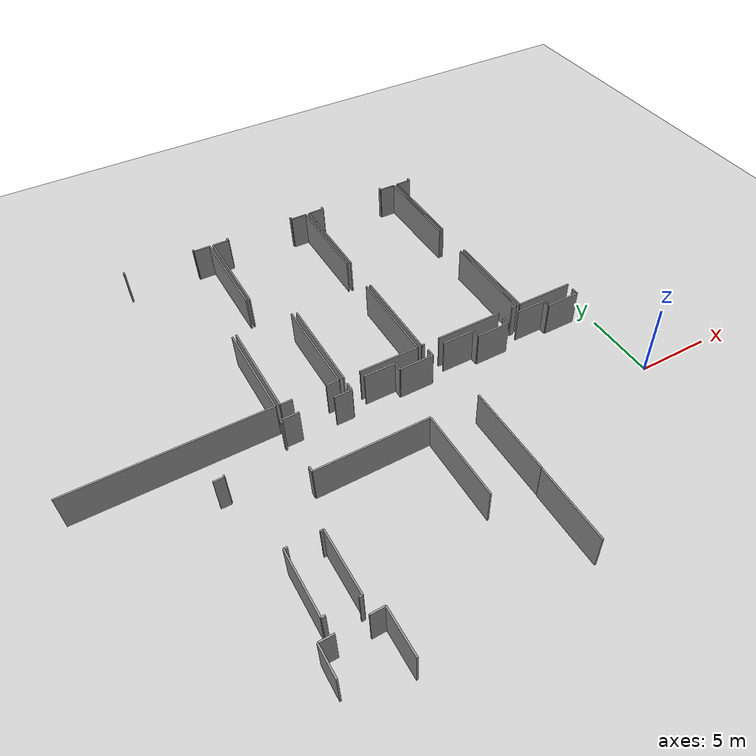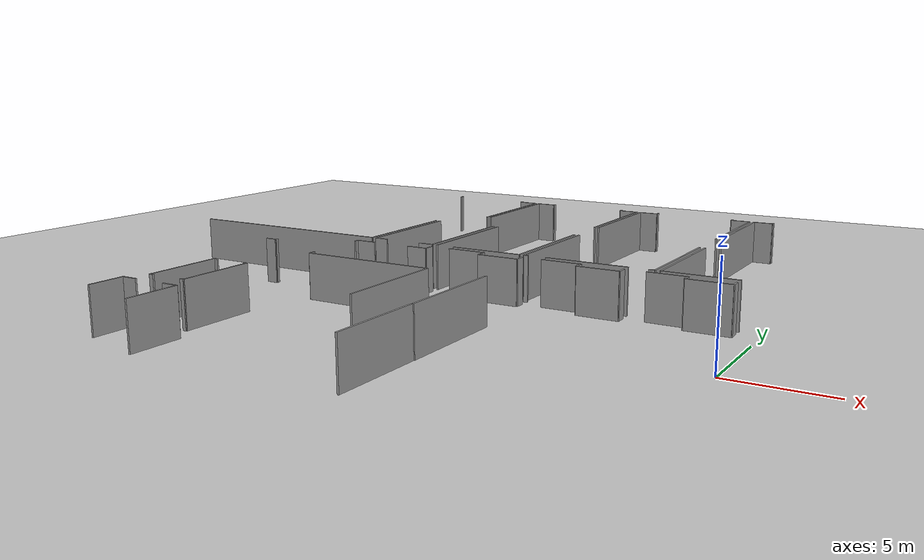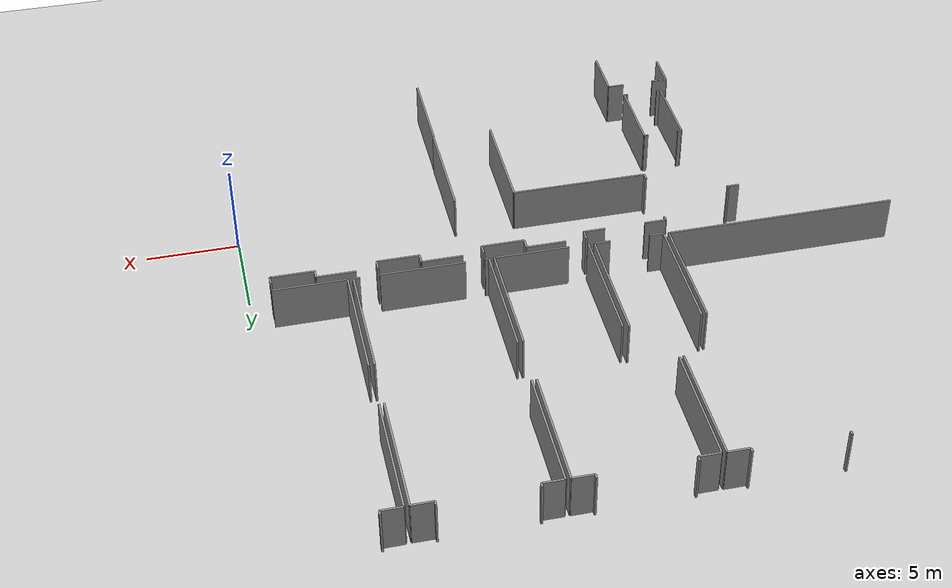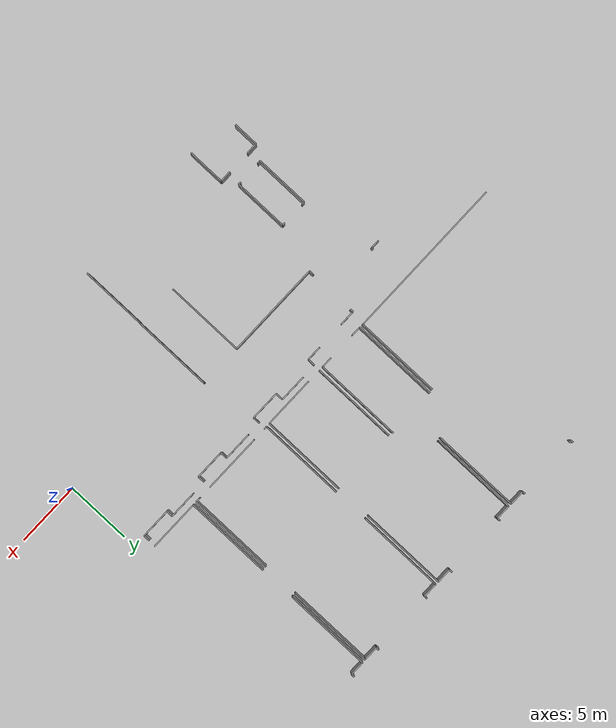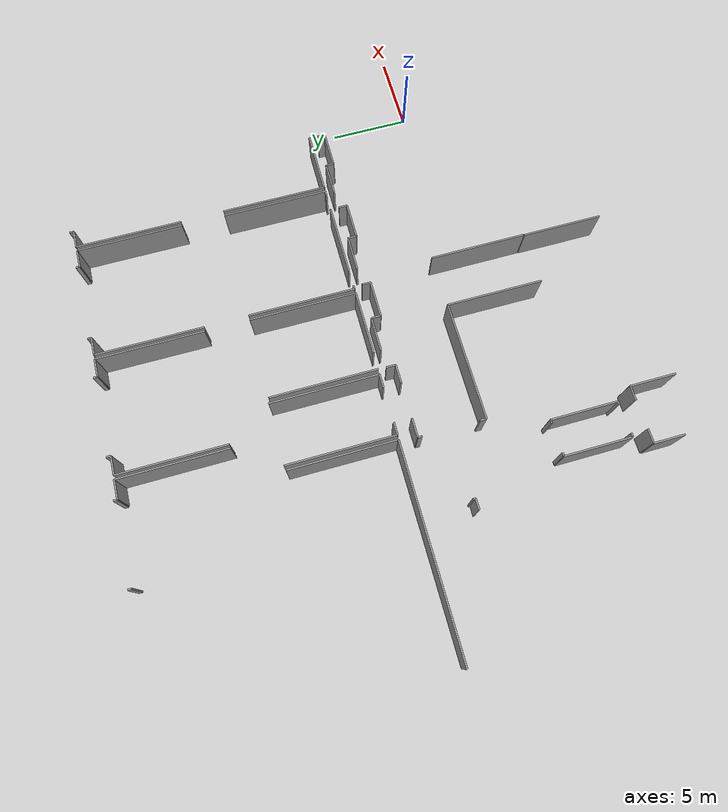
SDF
<sdf version="1.6">
 <world name="default">
  <model name="ground_plane">
   <static>1</static>
   <link name="link">
    <collision name="collision">
     <geometry><plane><normal>0 0 1</normal><size>100 100</size></plane></geometry>
     <surface><friction><ode><mu>100</mu><mu2>50</mu2></ode></friction></surface>
    </collision>
    <visual name="visual">
     <cast_shadows>0</cast_shadows>
     <geometry><plane><normal>0 0 1</normal><size>100 100</size></plane></geometry>
     <material>
      <script><uri>file://media/materials/scripts/gazebo.material</uri><name>Gazebo/Grey</name></script>
     </material>
    </visual>
   </link>
  </model>
  <model name="50045230">
   <static>1</static>
   <link name="Wall_26">
    <collision name="Wall_26_Collision">
     <geometry><box><size>6.72553226605 0.1 2.5</size></box></geometry>
     <pose>3.36276613303 0 1.25 0 0 0</pose>
    </collision>
    <visual name="Wall_26_Visual">
     <pose>3.36276613303 0 1.25 0 0 0</pose>
     <geometry><box><size>6.72553226605 0.1 2.5</size></box></geometry>
     <material>
      <script><uri>file://media/materials/scripts/gazebo.material</uri><name>Gazebo/Grey</name></script>
      <ambient>1 1 1 1</ambient>
     </material>
    </visual>
    <pose>28.5077507078 -9.62039940584 0 0 0 -1.57079632679</pose>
   </link>
   <link name="Wall_27">
    <collision name="Wall_27_Collision">
     <geometry><box><size>0.855434382419 0.1 2.5</size></box></geometry>
     <pose>0.42771719121 0 1.25 0 0 0</pose>
    </collision>
    <visual name="Wall_27_Visual">
     <pose>0.42771719121 0 1.25 0 0 0</pose>
     <geometry><box><size>0.855434382419 0.1 2.5</size></box></geometry>
     <material>
      <script><uri>file://media/materials/scripts/gazebo.material</uri><name>Gazebo/Grey</name></script>
      <ambient>1 1 1 1</ambient>
     </material>
    </visual>
    <pose>28.5077507078 -16.3459316719 0 0 0 3.14159265359</pose>
   </link>
   <link name="Wall_28">
    <collision name="Wall_28_Collision">
     <geometry><box><size>0.772785557403 0.1 2.5</size></box></geometry>
     <pose>0.386392778702 0 1.25 0 0 0</pose>
    </collision>
    <visual name="Wall_28_Visual">
     <pose>0.386392778702 0 1.25 0 0 0</pose>
     <geometry><box><size>0.772785557403 0.1 2.5</size></box></geometry>
     <material>
      <script><uri>file://media/materials/scripts/gazebo.material</uri><name>Gazebo/Grey</name></script>
      <ambient>1 1 1 1</ambient>
     </material>
    </visual>
    <pose>25.4884659819 -16.3459316719 0 0 0 3.14159265359</pose>
   </link>
   <link name="Wall_29">
    <collision name="Wall_29_Collision">
     <geometry><box><size>6.701029619 0.1 2.5</size></box></geometry>
     <pose>3.3505148095 0 1.25 0 0 0</pose>
    </collision>
    <visual name="Wall_29_Visual">
     <pose>3.3505148095 0 1.25 0 0 0</pose>
     <geometry><box><size>6.701029619 0.1 2.5</size></box></geometry>
     <material>
      <script><uri>file://media/materials/scripts/gazebo.material</uri><name>Gazebo/Grey</name></script>
      <ambient>1 1 1 1</ambient>
     </material>
    </visual>
    <pose>24.7156804245 -16.3459316719 0 0 0 1.57079632679</pose>
   </link>
   <link name="Wall_38">
    <collision name="Wall_38_Collision">
     <geometry><box><size>0.230553404344 0.1 2.5</size></box></geometry>
     <pose>0.115276702172 0 1.25 0 0 0</pose>
    </collision>
    <visual name="Wall_38_Visual">
     <pose>0.115276702172 0 1.25 0 0 0</pose>
     <geometry><box><size>0.230553404344 0.1 2.5</size></box></geometry>
     <material>
      <script><uri>file://media/materials/scripts/gazebo.material</uri><name>Gazebo/Grey</name></script>
      <ambient>1 1 1 1</ambient>
     </material>
    </visual>
    <pose>20.4308911092 -0.254802137951 0 0 0 1.57079632679</pose>
   </link>
   <link name="Wall_39">
    <collision name="Wall_39_Collision">
     <geometry><box><size>0.230553404344 0.1 2.5</size></box></geometry>
     <pose>0.115276702172 0 1.25 0 0 0</pose>
    </collision>
    <visual name="Wall_39_Visual">
     <pose>0.115276702172 0 1.25 0 0 0</pose>
     <geometry><box><size>0.230553404344 0.1 2.5</size></box></geometry>
     <material>
      <script><uri>file://media/materials/scripts/gazebo.material</uri><name>Gazebo/Grey</name></script>
      <ambient>1 1 1 1</ambient>
     </material>
    </visual>
    <pose>25.3323092158 -0.0242487336067 0 0 0 -1.57079632679</pose>
   </link>
   <link name="Wall_40">
    <collision name="Wall_40_Collision">
     <geometry><box><size>1.15809920398 0.1 2.5</size></box></geometry>
     <pose>0.579049601991 0 1.25 0 0 0</pose>
    </collision>
    <visual name="Wall_40_Visual">
     <pose>0.579049601991 0 1.25 0 0 0</pose>
     <geometry><box><size>1.15809920398 0.1 2.5</size></box></geometry>
     <material>
      <script><uri>file://media/materials/scripts/gazebo.material</uri><name>Gazebo/Grey</name></script>
      <ambient>1 1 1 1</ambient>
     </material>
    </visual>
    <pose>25.3323092158 -0.254802137951 0 0 0 0.0</pose>
   </link>
   <link name="Wall_41">
    <collision name="Wall_41_Collision">
     <geometry><box><size>6.70245073078 0.1 2.5</size></box></geometry>
     <pose>3.35122536539 0 1.25 0 0 0</pose>
    </collision>
    <visual name="Wall_41_Visual">
     <pose>3.35122536539 0 1.25 0 0 0</pose>
     <geometry><box><size>6.70245073078 0.1 2.5</size></box></geometry>
     <material>
      <script><uri>file://media/materials/scripts/gazebo.material</uri><name>Gazebo/Grey</name></script>
      <ambient>1 1 1 1</ambient>
     </material>
    </visual>
    <pose>26.4904084198 -0.254802137951 0 0 0 -1.56808764098</pose>
   </link>
   <link name="Wall_42">
    <collision name="Wall_42_Collision">
     <geometry><box><size>6.6383129991 0.1 2.5</size></box></geometry>
     <pose>3.31915649955 0 1.25 0 0 0</pose>
    </collision>
    <visual name="Wall_42_Visual">
     <pose>3.31915649955 0 1.25 0 0 0</pose>
     <geometry><box><size>6.6383129991 0.1 2.5</size></box></geometry>
     <material>
      <script><uri>file://media/materials/scripts/gazebo.material</uri><name>Gazebo/Grey</name></script>
      <ambient>1 1 1 1</ambient>
     </material>
    </visual>
    <pose>26.7381009814 -6.91812561098 0 0 0 1.57079632679</pose>
   </link>
   <link name="Wall_43">
    <collision name="Wall_43_Collision">
     <geometry><box><size>1.1339774271 0.1 2.5</size></box></geometry>
     <pose>0.566988713548 0 1.25 0 0 0</pose>
    </collision>
    <visual name="Wall_43_Visual">
     <pose>0.566988713548 0 1.25 0 0 0</pose>
     <geometry><box><size>1.1339774271 0.1 2.5</size></box></geometry>
     <material>
      <script><uri>file://media/materials/scripts/gazebo.material</uri><name>Gazebo/Grey</name></script>
      <ambient>1 1 1 1</ambient>
     </material>
    </visual>
    <pose>26.7381009814 -0.279812611881 0 0 0 0.0</pose>
   </link>
   <link name="Wall_44">
    <collision name="Wall_44_Collision">
     <geometry><box><size>0.272068251933 0.1 2.5</size></box></geometry>
     <pose>0.136034125966 0 1.25 0 0 0</pose>
    </collision>
    <visual name="Wall_44_Visual">
     <pose>0.136034125966 0 1.25 0 0 0</pose>
     <geometry><box><size>0.272068251933 0.1 2.5</size></box></geometry>
     <material>
      <script><uri>file://media/materials/scripts/gazebo.material</uri><name>Gazebo/Grey</name></script>
      <ambient>1 1 1 1</ambient>
     </material>
    </visual>
    <pose>27.8720784085 -0.279812611881 0 0 0 1.57079632679</pose>
   </link>
   <link name="Wall_45">
    <collision name="Wall_45_Collision">
     <geometry><box><size>0.252516916983 0.1 2.5</size></box></geometry>
     <pose>0.126258458492 0 1.25 0 0 0</pose>
    </collision>
    <visual name="Wall_45_Visual">
     <pose>0.126258458492 0 1.25 0 0 0</pose>
     <geometry><box><size>0.252516916983 0.1 2.5</size></box></geometry>
     <material>
      <script><uri>file://media/materials/scripts/gazebo.material</uri><name>Gazebo/Grey</name></script>
      <ambient>1 1 1 1</ambient>
     </material>
    </visual>
    <pose>32.7750199957 -0.00774435994769 0 0 0 -1.57079632679</pose>
   </link>
   <link name="Wall_46">
    <collision name="Wall_46_Collision">
     <geometry><box><size>1.14159483032 0.1 2.5</size></box></geometry>
     <pose>0.570797415161 0 1.25 0 0 0</pose>
    </collision>
    <visual name="Wall_46_Visual">
     <pose>0.570797415161 0 1.25 0 0 0</pose>
     <geometry><box><size>1.14159483032 0.1 2.5</size></box></geometry>
     <material>
      <script><uri>file://media/materials/scripts/gazebo.material</uri><name>Gazebo/Grey</name></script>
      <ambient>1 1 1 1</ambient>
     </material>
    </visual>
    <pose>32.7750199957 -0.260261276931 0 0 0 0.0</pose>
   </link>
   <link name="Wall_47">
    <collision name="Wall_47_Collision">
     <geometry><box><size>6.65786535204 0.1 2.5</size></box></geometry>
     <pose>3.32893267602 0 1.25 0 0 0</pose>
    </collision>
    <visual name="Wall_47_Visual">
     <pose>3.32893267602 0 1.25 0 0 0</pose>
     <geometry><box><size>6.65786535204 0.1 2.5</size></box></geometry>
     <material>
      <script><uri>file://media/materials/scripts/gazebo.material</uri><name>Gazebo/Grey</name></script>
      <ambient>1 1 1 1</ambient>
     </material>
    </visual>
    <pose>33.916614826 -0.260261276931 0 0 0 -1.57024333497</pose>
   </link>
   <link name="Wall_48">
    <collision name="Wall_48_Collision">
     <geometry><box><size>6.68135132733 0.1 2.5</size></box></geometry>
     <pose>3.34067566367 0 1.25 0 0 0</pose>
    </collision>
    <visual name="Wall_48_Visual">
     <pose>3.34067566367 0 1.25 0 0 0</pose>
     <geometry><box><size>6.68135132733 0.1 2.5</size></box></geometry>
     <material>
      <script><uri>file://media/materials/scripts/gazebo.material</uri><name>Gazebo/Grey</name></script>
      <ambient>1 1 1 1</ambient>
     </material>
    </visual>
    <pose>34.1743369685 -6.9511343583 0 0 0 1.57079632679</pose>
   </link>
   <link name="Wall_49">
    <collision name="Wall_49_Collision">
     <geometry><box><size>1.13677047495 0.1 2.5</size></box></geometry>
     <pose>0.568385237473 0 1.25 0 0 0</pose>
    </collision>
    <visual name="Wall_49_Visual">
     <pose>0.568385237473 0 1.25 0 0 0</pose>
     <geometry><box><size>1.13677047495 0.1 2.5</size></box></geometry>
     <material>
      <script><uri>file://media/materials/scripts/gazebo.material</uri><name>Gazebo/Grey</name></script>
      <ambient>1 1 1 1</ambient>
     </material>
    </visual>
    <pose>34.1743369685 -0.269783030965 0 0 0 0.0</pose>
   </link>
   <link name="Wall_50">
    <collision name="Wall_50_Collision">
     <geometry><box><size>0.242106465906 0.1 2.5</size></box></geometry>
     <pose>0.121053232953 0 1.25 0 0 0</pose>
    </collision>
    <visual name="Wall_50_Visual">
     <pose>0.121053232953 0 1.25 0 0 0</pose>
     <geometry><box><size>0.242106465906 0.1 2.5</size></box></geometry>
     <material>
      <script><uri>file://media/materials/scripts/gazebo.material</uri><name>Gazebo/Grey</name></script>
      <ambient>1 1 1 1</ambient>
     </material>
    </visual>
    <pose>35.3111074435 -0.269783030965 0 0 0 1.57079632679</pose>
   </link>
   <link name="Wall_51">
    <collision name="Wall_51_Collision">
     <geometry><box><size>0.242106465906 0.1 2.5</size></box></geometry>
     <pose>0.121053232953 0 1.25 0 0 0</pose>
    </collision>
    <visual name="Wall_51_Visual">
     <pose>0.121053232953 0 1.25 0 0 0</pose>
     <geometry><box><size>0.242106465906 0.1 2.5</size></box></geometry>
     <material>
      <script><uri>file://media/materials/scripts/gazebo.material</uri><name>Gazebo/Grey</name></script>
      <ambient>1 1 1 1</ambient>
     </material>
    </visual>
    <pose>40.2111290261 -0.027676565059 0 0 0 -1.57079632679</pose>
   </link>
   <link name="Wall_52">
    <collision name="Wall_52_Collision">
     <geometry><box><size>1.1520052814 0.1 2.5</size></box></geometry>
     <pose>0.5760026407 0 1.25 0 0 0</pose>
    </collision>
    <visual name="Wall_52_Visual">
     <pose>0.5760026407 0 1.25 0 0 0</pose>
     <geometry><box><size>1.1520052814 0.1 2.5</size></box></geometry>
     <material>
      <script><uri>file://media/materials/scripts/gazebo.material</uri><name>Gazebo/Grey</name></script>
      <ambient>1 1 1 1</ambient>
     </material>
    </visual>
    <pose>40.2111290261 -0.269783030965 0 0 0 0.0</pose>
   </link>
   <link name="Wall_53">
    <collision name="Wall_53_Collision">
     <geometry><box><size>6.68136131582 0.1 2.5</size></box></geometry>
     <pose>3.34068065791 0 1.25 0 0 0</pose>
    </collision>
    <visual name="Wall_53_Visual">
     <pose>3.34068065791 0 1.25 0 0 0</pose>
     <geometry><box><size>6.68136131582 0.1 2.5</size></box></geometry>
     <material>
      <script><uri>file://media/materials/scripts/gazebo.material</uri><name>Gazebo/Grey</name></script>
      <ambient>1 1 1 1</ambient>
     </material>
    </visual>
    <pose>41.3631343075 -0.269783030965 0 0 0 -1.56906717808</pose>
   </link>
   <link name="Wall_54">
    <collision name="Wall_54_Collision">
     <geometry><box><size>6.68554089911 0.1 2.5</size></box></geometry>
     <pose>3.34277044955 0 1.25 0 0 0</pose>
    </collision>
    <visual name="Wall_54_Visual">
     <pose>3.34277044955 0 1.25 0 0 0</pose>
     <geometry><box><size>6.68554089911 0.1 2.5</size></box></geometry>
     <material>
      <script><uri>file://media/materials/scripts/gazebo.material</uri><name>Gazebo/Grey</name></script>
      <ambient>1 1 1 1</ambient>
     </material>
    </visual>
    <pose>41.6302512473 -6.94008912362 0 0 0 1.57079632679</pose>
   </link>
   <link name="Wall_55">
    <collision name="Wall_55_Collision">
     <geometry><box><size>1.11671131311 0.1 2.5</size></box></geometry>
     <pose>0.558355656557 0 1.25 0 0 0</pose>
    </collision>
    <visual name="Wall_55_Visual">
     <pose>0.558355656557 0 1.25 0 0 0</pose>
     <geometry><box><size>1.11671131311 0.1 2.5</size></box></geometry>
     <material>
      <script><uri>file://media/materials/scripts/gazebo.material</uri><name>Gazebo/Grey</name></script>
      <ambient>1 1 1 1</ambient>
     </material>
    </visual>
    <pose>41.6302512473 -0.25454822451 0 0 0 0.0</pose>
   </link>
   <link name="Wall_56">
    <collision name="Wall_56_Collision">
     <geometry><box><size>0.254040397628 0.1 2.5</size></box></geometry>
     <pose>0.127020198814 0 1.25 0 0 0</pose>
    </collision>
    <visual name="Wall_56_Visual">
     <pose>0.127020198814 0 1.25 0 0 0</pose>
     <geometry><box><size>0.254040397628 0.1 2.5</size></box></geometry>
     <material>
      <script><uri>file://media/materials/scripts/gazebo.material</uri><name>Gazebo/Grey</name></script>
      <ambient>1 1 1 1</ambient>
     </material>
    </visual>
    <pose>42.7469625605 -0.25454822451 0 0 0 1.57079632679</pose>
   </link>
   <link name="Wall_123">
    <collision name="Wall_123_Collision">
     <geometry><box><size>6.64275648431 0.1 2.5</size></box></geometry>
     <pose>3.32137824216 0 1.25 0 0 0</pose>
    </collision>
    <visual name="Wall_123_Visual">
     <pose>3.32137824216 0 1.25 0 0 0</pose>
     <geometry><box><size>6.64275648431 0.1 2.5</size></box></geometry>
     <material>
      <script><uri>file://media/materials/scripts/gazebo.material</uri><name>Gazebo/Grey</name></script>
      <ambient>1 1 1 1</ambient>
     </material>
    </visual>
    <pose>41.6621173842 -16.3427577539 0 0 0 1.57079632679</pose>
   </link>
   <link name="Wall_126">
    <collision name="Wall_126_Collision">
     <geometry><box><size>3.94162638152 0.1 2.5</size></box></geometry>
     <pose>1.97081319076 0 1.25 0 0 0</pose>
    </collision>
    <visual name="Wall_126_Visual">
     <pose>1.97081319076 0 1.25 0 0 0</pose>
     <geometry><box><size>3.94162638152 0.1 2.5</size></box></geometry>
     <material>
      <script><uri>file://media/materials/scripts/gazebo.material</uri><name>Gazebo/Grey</name></script>
      <ambient>1 1 1 1</ambient>
     </material>
    </visual>
    <pose>45.6037426841 -16.3456777585 0 0 0 3.14085184141</pose>
   </link>
   <link name="Wall_127">
    <collision name="Wall_127_Collision">
     <geometry><box><size>6.66306955959 0.1 2.5</size></box></geometry>
     <pose>3.33153477979 0 1.25 0 0 0</pose>
    </collision>
    <visual name="Wall_127_Visual">
     <pose>3.33153477979 0 1.25 0 0 0</pose>
     <geometry><box><size>6.66306955959 0.1 2.5</size></box></geometry>
     <material>
      <script><uri>file://media/materials/scripts/gazebo.material</uri><name>Gazebo/Grey</name></script>
      <ambient>1 1 1 1</ambient>
     </material>
    </visual>
    <pose>34.2065839755 -16.3602777813 0 0 0 1.57079632679</pose>
   </link>
   <link name="Wall_128">
    <collision name="Wall_128_Collision">
     <geometry><box><size>6.64846953673 0.1 2.5</size></box></geometry>
     <pose>3.32423476837 0 1.25 0 0 0</pose>
    </collision>
    <visual name="Wall_128_Visual">
     <pose>3.32423476837 0 1.25 0 0 0</pose>
     <geometry><box><size>6.64846953673 0.1 2.5</size></box></geometry>
     <material>
      <script><uri>file://media/materials/scripts/gazebo.material</uri><name>Gazebo/Grey</name></script>
      <ambient>1 1 1 1</ambient>
     </material>
    </visual>
    <pose>41.3636421344 -9.69720822172 0 0 0 -1.57079632679</pose>
   </link>
   <link name="Wall_129">
    <collision name="Wall_129_Collision">
     <geometry><box><size>0.331230083664 0.1 2.5</size></box></geometry>
     <pose>0.165615041832 0 1.25 0 0 0</pose>
    </collision>
    <visual name="Wall_129_Visual">
     <pose>0.165615041832 0 1.25 0 0 0</pose>
     <geometry><box><size>0.331230083664 0.1 2.5</size></box></geometry>
     <material>
      <script><uri>file://media/materials/scripts/gazebo.material</uri><name>Gazebo/Grey</name></script>
      <ambient>1 1 1 1</ambient>
     </material>
    </visual>
    <pose>41.3636421344 -16.3456777585 0 0 0 3.14159265359</pose>
   </link>
   <link name="Wall_130">
    <collision name="Wall_130_Collision">
     <geometry><box><size>4.53273579037 0.1 2.5</size></box></geometry>
     <pose>2.26636789518 0 1.25 0 0 0</pose>
    </collision>
    <visual name="Wall_130_Visual">
     <pose>2.26636789518 0 1.25 0 0 0</pose>
     <geometry><box><size>4.53273579037 0.1 2.5</size></box></geometry>
     <material>
      <script><uri>file://media/materials/scripts/gazebo.material</uri><name>Gazebo/Grey</name></script>
      <ambient>1 1 1 1</ambient>
     </material>
    </visual>
    <pose>39.9940330341 -16.3456777585 0 0 0 3.14159265359</pose>
   </link>
   <link name="Wall_131">
    <collision name="Wall_131_Collision">
     <geometry><box><size>0.22848122015 0.1 2.5</size></box></geometry>
     <pose>0.114240610075 0 1.25 0 0 0</pose>
    </collision>
    <visual name="Wall_131_Visual">
     <pose>0.114240610075 0 1.25 0 0 0</pose>
     <geometry><box><size>0.22848122015 0.1 2.5</size></box></geometry>
     <material>
      <script><uri>file://media/materials/scripts/gazebo.material</uri><name>Gazebo/Grey</name></script>
      <ambient>1 1 1 1</ambient>
     </material>
    </visual>
    <pose>34.4345982455 -16.3456777585 0 0 0 -3.07764876766</pose>
   </link>
   <link name="Wall_132">
    <collision name="Wall_132_Collision">
     <geometry><box><size>6.66852869857 0.1 2.5</size></box></geometry>
     <pose>3.33426434928 0 1.25 0 0 0</pose>
    </collision>
    <visual name="Wall_132_Visual">
     <pose>3.33426434928 0 1.25 0 0 0</pose>
     <geometry><box><size>6.66852869857 0.1 2.5</size></box></geometry>
     <material>
      <script><uri>file://media/materials/scripts/gazebo.material</uri><name>Gazebo/Grey</name></script>
      <ambient>1 1 1 1</ambient>
     </material>
    </visual>
    <pose>28.8335216525 -16.3680221413 0 0 0 1.57079632679</pose>
   </link>
   <link name="Wall_133">
    <collision name="Wall_133_Collision">
     <geometry><box><size>6.66446608351 0.1 2.5</size></box></geometry>
     <pose>3.33223304176 0 1.25 0 0 0</pose>
    </collision>
    <visual name="Wall_133_Visual">
     <pose>3.33223304176 0 1.25 0 0 0</pose>
     <geometry><box><size>6.66446608351 0.1 2.5</size></box></geometry>
     <material>
      <script><uri>file://media/materials/scripts/gazebo.material</uri><name>Gazebo/Grey</name></script>
      <ambient>1 1 1 1</ambient>
     </material>
    </visual>
    <pose>33.9228357053 -9.69949344269 0 0 0 -1.57079632679</pose>
   </link>
   <link name="Wall_134">
    <collision name="Wall_134_Collision">
     <geometry><box><size>4.0294813985 0.1 2.5</size></box></geometry>
     <pose>2.01474069925 0 1.25 0 0 0</pose>
    </collision>
    <visual name="Wall_134_Visual">
     <pose>2.01474069925 0 1.25 0 0 0</pose>
     <geometry><box><size>4.0294813985 0.1 2.5</size></box></geometry>
     <material>
      <script><uri>file://media/materials/scripts/gazebo.material</uri><name>Gazebo/Grey</name></script>
      <ambient>1 1 1 1</ambient>
     </material>
    </visual>
    <pose>33.9228357053 -16.3639595262 0 0 0 -3.14058443061</pose>
   </link>
   <link name="Wall_136">
    <collision name="Wall_136_Collision">
     <geometry><box><size>6.62663298082 0.1 2.5</size></box></geometry>
     <pose>3.31331649041 0 1.25 0 0 0</pose>
    </collision>
    <visual name="Wall_136_Visual">
     <pose>3.31331649041 0 1.25 0 0 0</pose>
     <geometry><box><size>6.62663298082 0.1 2.5</size></box></geometry>
     <material>
      <script><uri>file://media/materials/scripts/gazebo.material</uri><name>Gazebo/Grey</name></script>
      <ambient>1 1 1 1</ambient>
     </material>
    </visual>
    <pose>24.4349791156 -9.69720822172 0 0 0 -1.57079632679</pose>
   </link>
   <link name="Wall_137">
    <collision name="Wall_137_Collision">
     <geometry><box><size>12.5752167879 0.1 2.5</size></box></geometry>
     <pose>6.28760839396 0 1.25 0 0 0</pose>
    </collision>
    <visual name="Wall_137_Visual">
     <pose>6.28760839396 0 1.25 0 0 0</pose>
     <geometry><box><size>12.5752167879 0.1 2.5</size></box></geometry>
     <material>
      <script><uri>file://media/materials/scripts/gazebo.material</uri><name>Gazebo/Grey</name></script>
      <ambient>1 1 1 1</ambient>
     </material>
    </visual>
    <pose>24.4349791156 -16.3238412025 0 0 0 -3.13953311142</pose>
   </link>
   <link name="Wall_164">
    <collision name="Wall_164_Collision">
     <geometry><box><size>1.94942044257 0.1 2.5</size></box></geometry>
     <pose>0.974710221286 0 1.25 0 0 0</pose>
    </collision>
    <visual name="Wall_164_Visual">
     <pose>0.974710221286 0 1.25 0 0 0</pose>
     <geometry><box><size>1.94942044257 0.1 2.5</size></box></geometry>
     <material>
      <script><uri>file://media/materials/scripts/gazebo.material</uri><name>Gazebo/Grey</name></script>
      <ambient>1 1 1 1</ambient>
     </material>
    </visual>
    <pose>20.3511622888 -32.2872522757 0 0 0 1.57079632679</pose>
   </link>
   <link name="Wall_165">
    <collision name="Wall_165_Collision">
     <geometry><box><size>0.877524851778 0.1 2.5</size></box></geometry>
     <pose>0.438762425889 0 1.25 0 0 0</pose>
    </collision>
    <visual name="Wall_165_Visual">
     <pose>0.438762425889 0 1.25 0 0 0</pose>
     <geometry><box><size>0.877524851778 0.1 2.5</size></box></geometry>
     <material>
      <script><uri>file://media/materials/scripts/gazebo.material</uri><name>Gazebo/Grey</name></script>
      <ambient>1 1 1 1</ambient>
     </material>
    </visual>
    <pose>20.3511622888 -30.3378318331 0 0 0 0.0</pose>
   </link>
   <link name="Wall_166">
    <collision name="Wall_166_Collision">
     <geometry><box><size>0.888697043178 0.1 2.5</size></box></geometry>
     <pose>0.444348521589 0 1.25 0 0 0</pose>
    </collision>
    <visual name="Wall_166_Visual">
     <pose>0.444348521589 0 1.25 0 0 0</pose>
     <geometry><box><size>0.888697043178 0.1 2.5</size></box></geometry>
     <material>
      <script><uri>file://media/materials/scripts/gazebo.material</uri><name>Gazebo/Grey</name></script>
      <ambient>1 1 1 1</ambient>
     </material>
    </visual>
    <pose>23.0045577463 -30.3378318331 0 0 0 0.0</pose>
   </link>
   <link name="Wall_167">
    <collision name="Wall_167_Collision">
     <geometry><box><size>2.88788452017 0.1 2.5</size></box></geometry>
     <pose>1.44394226008 0 1.25 0 0 0</pose>
    </collision>
    <visual name="Wall_167_Visual">
     <pose>1.44394226008 0 1.25 0 0 0</pose>
     <geometry><box><size>2.88788452017 0.1 2.5</size></box></geometry>
     <material>
      <script><uri>file://media/materials/scripts/gazebo.material</uri><name>Gazebo/Grey</name></script>
      <ambient>1 1 1 1</ambient>
     </material>
    </visual>
    <pose>23.8932547894 -30.3378318331 0 0 0 -1.57079632679</pose>
   </link>
   <link name="Wall_178">
    <collision name="Wall_178_Collision">
     <geometry><box><size>0.241217768863 0.1 2.5</size></box></geometry>
     <pose>0.120608884431 0 1.25 0 0 0</pose>
    </collision>
    <visual name="Wall_178_Visual">
     <pose>0.120608884431 0 1.25 0 0 0</pose>
     <geometry><box><size>0.241217768863 0.1 2.5</size></box></geometry>
     <material>
      <script><uri>file://media/materials/scripts/gazebo.material</uri><name>Gazebo/Grey</name></script>
      <ambient>1 1 1 1</ambient>
     </material>
    </visual>
    <pose>21.252555004 -29.3270024249 0 0 0 3.14159265359</pose>
   </link>
   <link name="Wall_179">
    <collision name="Wall_179_Collision">
     <geometry><box><size>4.20226744703 0.1 2.5</size></box></geometry>
     <pose>2.10113372351 0 1.25 0 0 0</pose>
    </collision>
    <visual name="Wall_179_Visual">
     <pose>2.10113372351 0 1.25 0 0 0</pose>
     <geometry><box><size>4.20226744703 0.1 2.5</size></box></geometry>
     <material>
      <script><uri>file://media/materials/scripts/gazebo.material</uri><name>Gazebo/Grey</name></script>
      <ambient>1 1 1 1</ambient>
     </material>
    </visual>
    <pose>21.0113372351 -29.3270024249 0 0 0 1.57079632679</pose>
   </link>
   <link name="Wall_180">
    <collision name="Wall_180_Collision">
     <geometry><box><size>0.215826424772 0.1 2.5</size></box></geometry>
     <pose>0.107913212386 0 1.25 0 0 0</pose>
    </collision>
    <visual name="Wall_180_Visual">
     <pose>0.107913212386 0 1.25 0 0 0</pose>
     <geometry><box><size>0.215826424772 0.1 2.5</size></box></geometry>
     <material>
      <script><uri>file://media/materials/scripts/gazebo.material</uri><name>Gazebo/Grey</name></script>
      <ambient>1 1 1 1</ambient>
     </material>
    </visual>
    <pose>21.0113372351 -25.1247349778 0 0 0 0.0</pose>
   </link>
   <link name="Wall_181">
    <collision name="Wall_181_Collision">
     <geometry><box><size>0.22077773687 0.1 2.5</size></box></geometry>
     <pose>0.110388868435 0 1.25 0 0 0</pose>
    </collision>
    <visual name="Wall_181_Visual">
     <pose>0.110388868435 0 1.25 0 0 0</pose>
     <geometry><box><size>0.22077773687 0.1 2.5</size></box></geometry>
     <material>
      <script><uri>file://media/materials/scripts/gazebo.material</uri><name>Gazebo/Grey</name></script>
      <ambient>1 1 1 1</ambient>
     </material>
    </visual>
    <pose>22.9954168624 -25.1247349778 0 0 0 0.0</pose>
   </link>
   <link name="Wall_182">
    <collision name="Wall_182_Collision">
     <geometry><box><size>4.16963956987 0.1 2.5</size></box></geometry>
     <pose>2.08481978494 0 1.25 0 0 0</pose>
    </collision>
    <visual name="Wall_182_Visual">
     <pose>2.08481978494 0 1.25 0 0 0</pose>
     <geometry><box><size>4.16963956987 0.1 2.5</size></box></geometry>
     <material>
      <script><uri>file://media/materials/scripts/gazebo.material</uri><name>Gazebo/Grey</name></script>
      <ambient>1 1 1 1</ambient>
     </material>
    </visual>
    <pose>23.2161945993 -25.1247349778 0 0 0 -1.57079632679</pose>
   </link>
   <link name="Wall_183">
    <collision name="Wall_183_Collision">
     <geometry><box><size>0.201099445199 0.1 2.5</size></box></geometry>
     <pose>0.1005497226 0 1.25 0 0 0</pose>
    </collision>
    <visual name="Wall_183_Visual">
     <pose>0.1005497226 0 1.25 0 0 0</pose>
     <geometry><box><size>0.201099445199 0.1 2.5</size></box></geometry>
     <material>
      <script><uri>file://media/materials/scripts/gazebo.material</uri><name>Gazebo/Grey</name></script>
      <ambient>1 1 1 1</ambient>
     </material>
    </visual>
    <pose>23.2161945993 -29.2943745477 0 0 0 3.14159265359</pose>
   </link>
   <link name="Wall_188">
    <collision name="Wall_188_Collision">
     <geometry><box><size>0.153617631749 0.1 2.5</size></box></geometry>
     <pose>0.0768088158747 0 1.25 0 0 0</pose>
    </collision>
    <visual name="Wall_188_Visual">
     <pose>0.0768088158747 0 1.25 0 0 0</pose>
     <geometry><box><size>0.153617631749 0.1 2.5</size></box></geometry>
     <material>
      <script><uri>file://media/materials/scripts/gazebo.material</uri><name>Gazebo/Grey</name></script>
      <ambient>1 1 1 1</ambient>
     </material>
    </visual>
    <pose>20.0900123148 -19.373722498 0 0 0 -1.57079632679</pose>
   </link>
   <link name="Wall_189">
    <collision name="Wall_189_Collision">
     <geometry><box><size>0.651290760062 0.1 2.5</size></box></geometry>
     <pose>0.325645380031 0 1.25 0 0 0</pose>
    </collision>
    <visual name="Wall_189_Visual">
     <pose>0.325645380031 0 1.25 0 0 0</pose>
     <geometry><box><size>0.651290760062 0.1 2.5</size></box></geometry>
     <material>
      <script><uri>file://media/materials/scripts/gazebo.material</uri><name>Gazebo/Grey</name></script>
      <ambient>1 1 1 1</ambient>
     </material>
    </visual>
    <pose>20.0900123148 -19.5273401297 0 0 0 3.13866868531</pose>
   </link>
   <link name="Wall_335">
    <collision name="Wall_335_Collision">
     <geometry><box><size>5.05859052649 0.1 2.5</size></box></geometry>
     <pose>2.52929526324 0 1.25 0 0 0</pose>
    </collision>
    <visual name="Wall_335_Visual">
     <pose>2.52929526324 0 1.25 0 0 0</pose>
     <geometry><box><size>5.05859052649 0.1 2.5</size></box></geometry>
     <material>
      <script><uri>file://media/materials/scripts/gazebo.material</uri><name>Gazebo/Grey</name></script>
      <ambient>1 1 1 1</ambient>
     </material>
    </visual>
    <pose>34.9496616603 -27.6962433506 0 0 0 -1.57079632679</pose>
   </link>
   <link name="Wall_350">
    <collision name="Wall_350_Collision">
     <geometry><box><size>6.07335559308 0.1 2.5</size></box></geometry>
     <pose>3.03667779654 0 1.25 0 0 0</pose>
    </collision>
    <visual name="Wall_350_Visual">
     <pose>3.03667779654 0 1.25 0 0 0</pose>
     <geometry><box><size>6.07335559308 0.1 2.5</size></box></geometry>
     <material>
      <script><uri>file://media/materials/scripts/gazebo.material</uri><name>Gazebo/Grey</name></script>
      <ambient>1 1 1 1</ambient>
     </material>
    </visual>
    <pose>31.6715121815 -27.6487615372 0 0 0 1.57079632679</pose>
   </link>
   <link name="Wall_351">
    <collision name="Wall_351_Collision">
     <geometry><box><size>7.41008290274 0.1 2.5</size></box></geometry>
     <pose>3.70504145137 0 1.25 0 0 0</pose>
    </collision>
    <visual name="Wall_351_Visual">
     <pose>3.70504145137 0 1.25 0 0 0</pose>
     <geometry><box><size>7.41008290274 0.1 2.5</size></box></geometry>
     <material>
      <script><uri>file://media/materials/scripts/gazebo.material</uri><name>Gazebo/Grey</name></script>
      <ambient>1 1 1 1</ambient>
     </material>
    </visual>
    <pose>31.6715121815 -21.5754059441 0 0 0 3.14159265359</pose>
   </link>
   <link name="Wall_352">
    <collision name="Wall_352_Collision">
     <geometry><box><size>0.386329300342 0.1 2.5</size></box></geometry>
     <pose>0.193164650171 0 1.25 0 0 0</pose>
    </collision>
    <visual name="Wall_352_Visual">
     <pose>0.193164650171 0 1.25 0 0 0</pose>
     <geometry><box><size>0.386329300342 0.1 2.5</size></box></geometry>
     <material>
      <script><uri>file://media/materials/scripts/gazebo.material</uri><name>Gazebo/Grey</name></script>
      <ambient>1 1 1 1</ambient>
     </material>
    </visual>
    <pose>24.2614292788 -21.5754059441 0 0 0 1.57079632679</pose>
   </link>
   <link name="Wall_353">
    <collision name="Wall_353_Collision">
     <geometry><box><size>0.26280041134 0.1 2.5</size></box></geometry>
     <pose>0.13140020567 0 1.25 0 0 0</pose>
    </collision>
    <visual name="Wall_353_Visual">
     <pose>0.13140020567 0 1.25 0 0 0</pose>
     <geometry><box><size>0.26280041134 0.1 2.5</size></box></geometry>
     <material>
      <script><uri>file://media/materials/scripts/gazebo.material</uri><name>Gazebo/Grey</name></script>
      <ambient>1 1 1 1</ambient>
     </material>
    </visual>
    <pose>24.2614292788 -17.6888798609 0 0 0 1.57079632679</pose>
   </link>
   <link name="Wall_354">
    <collision name="Wall_354_Collision">
     <geometry><box><size>1.17054096259 0.1 2.5</size></box></geometry>
     <pose>0.585270481293 0 1.25 0 0 0</pose>
    </collision>
    <visual name="Wall_354_Visual">
     <pose>0.585270481293 0 1.25 0 0 0</pose>
     <geometry><box><size>1.17054096259 0.1 2.5</size></box></geometry>
     <material>
      <script><uri>file://media/materials/scripts/gazebo.material</uri><name>Gazebo/Grey</name></script>
      <ambient>1 1 1 1</ambient>
     </material>
    </visual>
    <pose>24.2614292788 -17.4260794495 0 0 0 0.0</pose>
   </link>
   <link name="Wall_355">
    <collision name="Wall_355_Collision">
     <geometry><box><size>1.15848007414 0.1 2.5</size></box></geometry>
     <pose>0.579240037071 0 1.25 0 0 0</pose>
    </collision>
    <visual name="Wall_355_Visual">
     <pose>0.579240037071 0 1.25 0 0 0</pose>
     <geometry><box><size>1.15848007414 0.1 2.5</size></box></geometry>
     <material>
      <script><uri>file://media/materials/scripts/gazebo.material</uri><name>Gazebo/Grey</name></script>
      <ambient>1 1 1 1</ambient>
     </material>
    </visual>
    <pose>27.64749197 -17.4260794495 0 0 0 0.0</pose>
   </link>
   <link name="Wall_356">
    <collision name="Wall_356_Collision">
     <geometry><box><size>0.585524394734 0.1 2.5</size></box></geometry>
     <pose>0.292762197367 0 1.25 0 0 0</pose>
    </collision>
    <visual name="Wall_356_Visual">
     <pose>0.292762197367 0 1.25 0 0 0</pose>
     <geometry><box><size>0.585524394734 0.1 2.5</size></box></geometry>
     <material>
      <script><uri>file://media/materials/scripts/gazebo.material</uri><name>Gazebo/Grey</name></script>
      <ambient>1 1 1 1</ambient>
     </material>
    </visual>
    <pose>28.8059720441 -17.4260794495 0 0 0 1.57079632679</pose>
   </link>
   <link name="Wall_357">
    <collision name="Wall_357_Collision">
     <geometry><box><size>2.13287290363 0.1 2.5</size></box></geometry>
     <pose>1.06643645181 0 1.25 0 0 0</pose>
    </collision>
    <visual name="Wall_357_Visual">
     <pose>1.06643645181 0 1.25 0 0 0</pose>
     <geometry><box><size>2.13287290363 0.1 2.5</size></box></geometry>
     <material>
      <script><uri>file://media/materials/scripts/gazebo.material</uri><name>Gazebo/Grey</name></script>
      <ambient>1 1 1 1</ambient>
     </material>
    </visual>
    <pose>29.9363946831 -16.8405550548 0 0 0 0.0</pose>
   </link>
   <link name="Wall_358">
    <collision name="Wall_358_Collision">
     <geometry><box><size>0.590602663552 0.1 2.5</size></box></geometry>
     <pose>0.295301331776 0 1.25 0 0 0</pose>
    </collision>
    <visual name="Wall_358_Visual">
     <pose>0.295301331776 0 1.25 0 0 0</pose>
     <geometry><box><size>0.590602663552 0.1 2.5</size></box></geometry>
     <material>
      <script><uri>file://media/materials/scripts/gazebo.material</uri><name>Gazebo/Grey</name></script>
      <ambient>1 1 1 1</ambient>
     </material>
    </visual>
    <pose>32.0692675867 -16.8405550548 0 0 0 -1.57079632679</pose>
   </link>
   <link name="Wall_359">
    <collision name="Wall_359_Collision">
     <geometry><box><size>2.29791664022 0.1 2.5</size></box></geometry>
     <pose>1.14895832011 0 1.25 0 0 0</pose>
    </collision>
    <visual name="Wall_359_Visual">
     <pose>1.14895832011 0 1.25 0 0 0</pose>
     <geometry><box><size>2.29791664022 0.1 2.5</size></box></geometry>
     <material>
      <script><uri>file://media/materials/scripts/gazebo.material</uri><name>Gazebo/Grey</name></script>
      <ambient>1 1 1 1</ambient>
     </material>
    </visual>
    <pose>32.0692675867 -17.4311577183 0 0 0 0.0</pose>
   </link>
   <link name="Wall_360">
    <collision name="Wall_360_Collision">
     <geometry><box><size>0.545913897952 0.1 2.5</size></box></geometry>
     <pose>0.272956948976 0 1.25 0 0 0</pose>
    </collision>
    <visual name="Wall_360_Visual">
     <pose>0.272956948976 0 1.25 0 0 0</pose>
     <geometry><box><size>0.545913897952 0.1 2.5</size></box></geometry>
     <material>
      <script><uri>file://media/materials/scripts/gazebo.material</uri><name>Gazebo/Grey</name></script>
      <ambient>1 1 1 1</ambient>
     </material>
    </visual>
    <pose>34.3671842269 -17.4311577183 0 0 0 1.57079632679</pose>
   </link>
   <link name="Wall_361">
    <collision name="Wall_361_Collision">
     <geometry><box><size>2.2090469359 0.1 2.5</size></box></geometry>
     <pose>1.10452346795 0 1.25 0 0 0</pose>
    </collision>
    <visual name="Wall_361_Visual">
     <pose>1.10452346795 0 1.25 0 0 0</pose>
     <geometry><box><size>2.2090469359 0.1 2.5</size></box></geometry>
     <material>
      <script><uri>file://media/materials/scripts/gazebo.material</uri><name>Gazebo/Grey</name></script>
      <ambient>1 1 1 1</ambient>
     </material>
    </visual>
    <pose>35.4844033669 -16.8852438204 0 0 0 0.0</pose>
   </link>
   <link name="Wall_362">
    <collision name="Wall_362_Collision">
     <geometry><box><size>0.545913897952 0.1 2.5</size></box></geometry>
     <pose>0.272956948976 0 1.25 0 0 0</pose>
    </collision>
    <visual name="Wall_362_Visual">
     <pose>0.272956948976 0 1.25 0 0 0</pose>
     <geometry><box><size>0.545913897952 0.1 2.5</size></box></geometry>
     <material>
      <script><uri>file://media/materials/scripts/gazebo.material</uri><name>Gazebo/Grey</name></script>
      <ambient>1 1 1 1</ambient>
     </material>
    </visual>
    <pose>37.6934503028 -16.8852438204 0 0 0 -1.57079632679</pose>
   </link>
   <link name="Wall_363">
    <collision name="Wall_363_Collision">
     <geometry><box><size>2.28522096817 0.1 2.5</size></box></geometry>
     <pose>1.14261048409 0 1.25 0 0 0</pose>
    </collision>
    <visual name="Wall_363_Visual">
     <pose>1.14261048409 0 1.25 0 0 0</pose>
     <geometry><box><size>2.28522096817 0.1 2.5</size></box></geometry>
     <material>
      <script><uri>file://media/materials/scripts/gazebo.material</uri><name>Gazebo/Grey</name></script>
      <ambient>1 1 1 1</ambient>
     </material>
    </visual>
    <pose>37.6934503028 -17.4311577183 0 0 0 0.0</pose>
   </link>
   <link name="Wall_364">
    <collision name="Wall_364_Collision">
     <geometry><box><size>0.545913897952 0.1 2.5</size></box></geometry>
     <pose>0.272956948976 0 1.25 0 0 0</pose>
    </collision>
    <visual name="Wall_364_Visual">
     <pose>0.272956948976 0 1.25 0 0 0</pose>
     <geometry><box><size>0.545913897952 0.1 2.5</size></box></geometry>
     <material>
      <script><uri>file://media/materials/scripts/gazebo.material</uri><name>Gazebo/Grey</name></script>
      <ambient>1 1 1 1</ambient>
     </material>
    </visual>
    <pose>39.978671271 -17.4311577183 0 0 0 1.57079632679</pose>
   </link>
   <link name="Wall_365">
    <collision name="Wall_365_Collision">
     <geometry><box><size>2.09478588749 0.1 2.5</size></box></geometry>
     <pose>1.04739294375 0 1.25 0 0 0</pose>
    </collision>
    <visual name="Wall_365_Visual">
     <pose>1.04739294375 0 1.25 0 0 0</pose>
     <geometry><box><size>2.09478588749 0.1 2.5</size></box></geometry>
     <material>
      <script><uri>file://media/materials/scripts/gazebo.material</uri><name>Gazebo/Grey</name></script>
      <ambient>1 1 1 1</ambient>
     </material>
    </visual>
    <pose>41.1339774271 -16.8852438204 0 0 0 0.0</pose>
   </link>
   <link name="Wall_366">
    <collision name="Wall_366_Collision">
     <geometry><box><size>0.495131209771 0.1 2.5</size></box></geometry>
     <pose>0.247565604885 0 1.25 0 0 0</pose>
    </collision>
    <visual name="Wall_366_Visual">
     <pose>0.247565604885 0 1.25 0 0 0</pose>
     <geometry><box><size>0.495131209771 0.1 2.5</size></box></geometry>
     <material>
      <script><uri>file://media/materials/scripts/gazebo.material</uri><name>Gazebo/Grey</name></script>
      <ambient>1 1 1 1</ambient>
     </material>
    </visual>
    <pose>43.2287633146 -16.8852438204 0 0 0 -1.57079632679</pose>
   </link>
   <link name="Wall_367">
    <collision name="Wall_367_Collision">
     <geometry><box><size>2.32990973377 0.1 2.5</size></box></geometry>
     <pose>1.16495486689 0 1.25 0 0 0</pose>
    </collision>
    <visual name="Wall_367_Visual">
     <pose>1.16495486689 0 1.25 0 0 0</pose>
     <geometry><box><size>2.32990973377 0.1 2.5</size></box></geometry>
     <material>
      <script><uri>file://media/materials/scripts/gazebo.material</uri><name>Gazebo/Grey</name></script>
      <ambient>1 1 1 1</ambient>
     </material>
    </visual>
    <pose>43.2287633146 -17.3803750302 0 0 0 0.0</pose>
   </link>
   <link name="Wall_368">
    <collision name="Wall_368_Collision">
     <geometry><box><size>0.493480772405 0.1 2.5</size></box></geometry>
     <pose>0.246740386202 0 1.25 0 0 0</pose>
    </collision>
    <visual name="Wall_368_Visual">
     <pose>0.246740386202 0 1.25 0 0 0</pose>
     <geometry><box><size>0.493480772405 0.1 2.5</size></box></geometry>
     <material>
      <script><uri>file://media/materials/scripts/gazebo.material</uri><name>Gazebo/Grey</name></script>
      <ambient>1 1 1 1</ambient>
     </material>
    </visual>
    <pose>45.5586730484 -17.3803750302 0 0 0 1.57079632679</pose>
   </link>
   <link name="Wall_397">
    <collision name="Wall_397_Collision">
     <geometry><box><size>6.07628756755 0.1 2.5</size></box></geometry>
     <pose>3.03814378378 0 1.25 0 0 0</pose>
    </collision>
    <visual name="Wall_397_Visual">
     <pose>3.03814378378 0 1.25 0 0 0</pose>
     <geometry><box><size>6.07628756755 0.1 2.5</size></box></geometry>
     <material>
      <script><uri>file://media/materials/scripts/gazebo.material</uri><name>Gazebo/Grey</name></script>
      <ambient>1 1 1 1</ambient>
     </material>
    </visual>
    <pose>34.963880813 -21.5724859395 0 0 0 -1.56881141475</pose>
   </link>
   <pose>-46.75 23.3491252682 0 0 0 0</pose>
  </model>
 </world>
</sdf>
